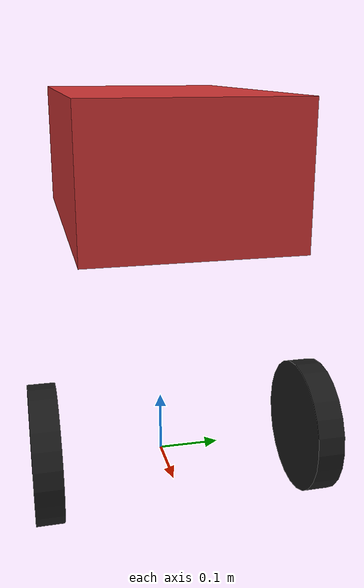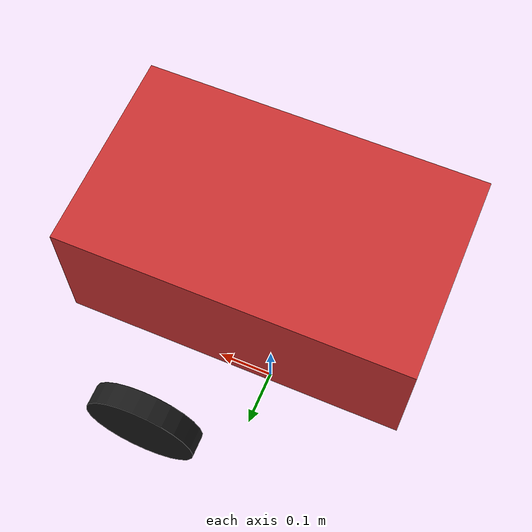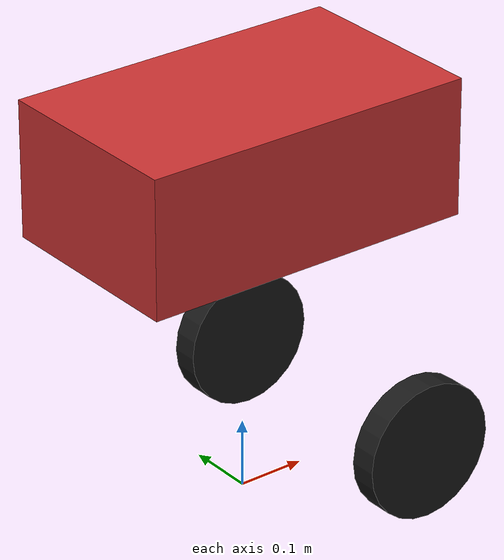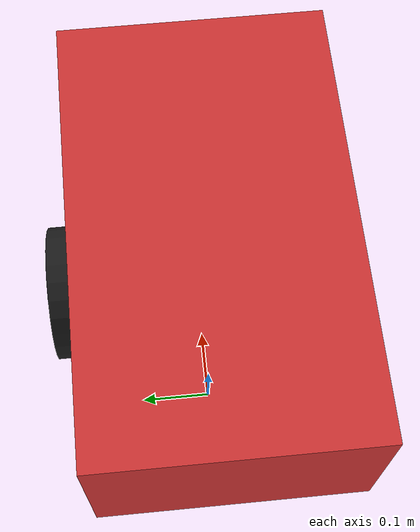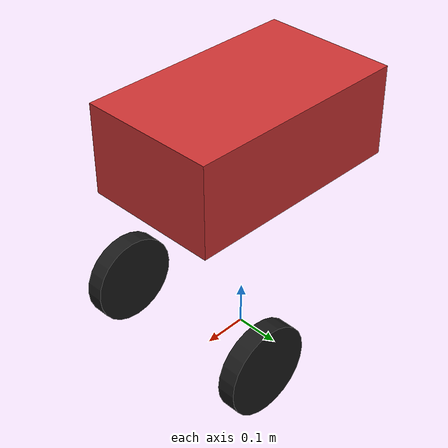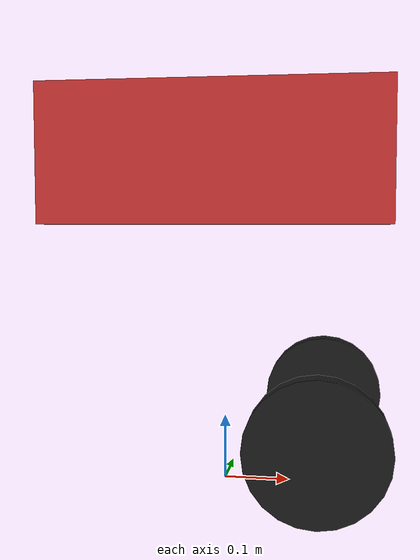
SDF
<?xml version="1.0"?>
<sdf version="1.9">
  <model name="simple_box_robot">
    <link name="base_link">
      <pose>0 0 0.5 0 0 0</pose>
      <inertial>
        <mass>5.0</mass>
        <inertia>
          <ixx>0.0833</ixx>
          <ixy>0</ixy>
          <ixz>0</ixz>
          <iyy>0.0833</iyy>
          <iyz>0</iyz>
          <izz>0.0833</izz>
        </inertia>
      </inertial>
      <visual name="base_visual">
        <geometry>
          <box>
            <size>0.5 0.3 0.2</size>
          </box>
        </geometry>
        <material>
          <diffuse>0.8 0.2 0.2</diffuse>
          <specular>0.5 0.5 0.5</specular>
        </material>
      </visual>
      <collision name="base_collision">
        <geometry>
          <box>
            <size>0.5 0.3 0.2</size>
          </box>
        </geometry>
      </collision>
    </link>

    <link name="wheel_left">
      <pose degrees="true">0.15 0.2 0.1 90 0 0</pose>
      <inertial>
        <mass>0.5</mass>
        <inertia>
          <ixx>0.0005</ixx>
          <ixy>0</ixy>
          <ixz>0</ixz>
          <iyy>0.0005</iyy>
          <iyz>0</iyz>
          <izz>0.001</izz>
        </inertia>
      </inertial>
      <visual name="wheel_left_visual">
        <geometry>
          <cylinder>
            <radius>0.1</radius>
            <length>0.04</length>
          </cylinder>
        </geometry>
        <material>
          <diffuse>0.1 0.1 0.1</diffuse>
        </material>
      </visual>
      <collision name="wheel_left_collision">
        <geometry>
          <sphere>
            <radius>0.1</radius>
          </sphere>
        </geometry>
      </collision>
    </link>

    <link name="wheel_right">
      <pose degrees="true">0.15 -0.2 0.1 -90 0 0</pose>
      <inertial>
        <mass>0.5</mass>
        <inertia>
          <ixx>0.0005</ixx>
          <ixy>0</ixy>
          <ixz>0</ixz>
          <iyy>0.0005</iyy>
          <iyz>0</iyz>
          <izz>0.001</izz>
        </inertia>
      </inertial>
      <visual name="wheel_right_visual">
        <geometry>
          <cylinder>
            <radius>0.1</radius>
            <length>0.04</length>
          </cylinder>
        </geometry>
        <material>
          <diffuse>0.1 0.1 0.1</diffuse>
        </material>
      </visual>
      <collision name="wheel_right_collision">
        <geometry>
          <sphere>
            <radius>0.1</radius>
          </sphere>
        </geometry>
      </collision>
    </link>

    <joint name="wheel_left_joint" type="revolute">
      <parent>base_link</parent>
      <child>wheel_left</child>
      <axis>
        <xyz>0 0 1</xyz>
        <limit>
          <lower>-1e16</lower>
          <upper>1e16</upper>
        </limit>
        <dynamics>
          <damping>0.01</damping>
        </dynamics>
      </axis>
    </joint>

    <joint name="wheel_right_joint" type="revolute">
      <parent>base_link</parent>
      <child>wheel_right</child>
      <axis>
        <xyz>0 0 1</xyz>
        <limit>
          <lower>-1e16</lower>
          <upper>1e16</upper>
        </limit>
        <dynamics>
          <damping>0.01</damping>
        </dynamics>
      </axis>
    </joint>
  </model>
</sdf>
